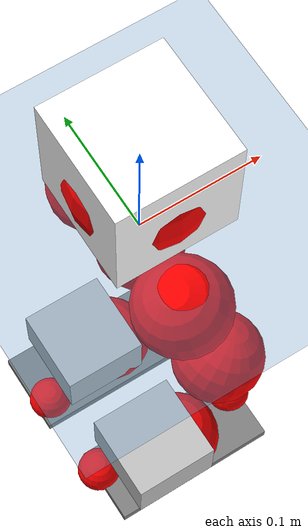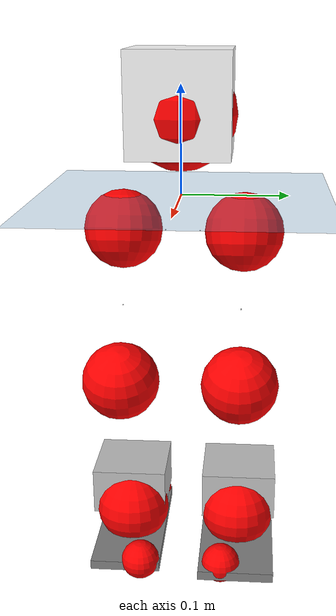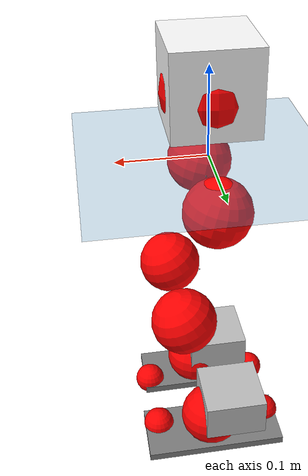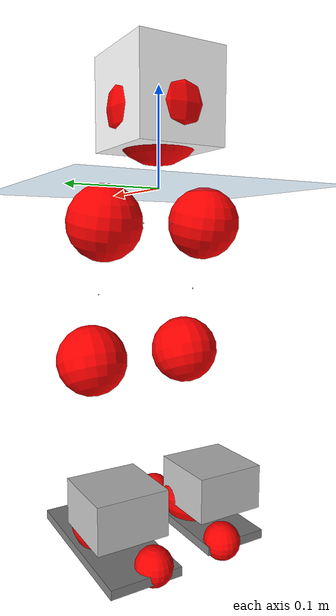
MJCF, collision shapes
<mujoco model="pi_12dof_release_v1">
  <compiler angle="radian" assetdir="assets" balanceinertia="true" inertiafromgeom="false"/>

  <option timestep="0.005" density="1.2" viscosity="2e-05"/>

  <size nkey="1"/>

  <visual>
    <quality shadowsize="8192"/>
    <map shadowclip="0.5"/>
  </visual>

  <default>
    <default class="/">
      <joint armature="0.01" damping="0.01" frictionloss="0.01"/>
      <geom contype="0" conaffinity="0" group="1" solref="-1000 -80"/>
      <site size="0.01 0.005 0.005" group="5"/>
      <general forcelimited="true" biastype="affine" gainprm="20" biasprm="0 -20 -0.5"/>
      <default class="foot">
        <geom size="0.0845 0.036 0.005" type="box" condim="6" group="4" priority="1" friction="0.9 0.2 0.2" solimp="0.015 1 0.005"/>
      </default>
      <default class="reward_collision_sphere">
        <geom group="5" rgba="1 0 0 1"/>
      </default>
    </default>
  </default>

  <asset>
    <texture type="skybox" colorspace="auto" name="//unnamed_texture_0" builtin="gradient" rgb1="0.95 0.95 0.95" rgb2="0.95 0.95 0.95" width="100" height="600"/>
    <texture type="2d" colorspace="auto" name="texplane" builtin="checker" rgb1="0.345 0.575 0.748" rgb2="0.345 0.575 0.748" markrgb="1 1 1" width="512" height="512"/>
    <material name="MatPlane" class="/" texture="texplane" texuniform="true" texrepeat="2 2" specular="0.9"/>
    <mesh name="baselink_1" class="/" file="baselink_1.STL"/>
    <mesh name="r_hip_pitch_link" class="/" file="r_hip_pitch_link.STL"/>
    <mesh name="r_hip_roll_link" class="/" file="r_hip_roll_link.STL"/>
    <mesh name="r_thigh_link" class="/" file="r_thigh_link.STL"/>
    <mesh name="r_calf_link" class="/" file="r_calf_link.STL"/>
    <mesh name="r_ankle_pitch_link" class="/" file="r_ankle_pitch_link.STL"/>
    <mesh name="r_ankle_roll_link" class="/" file="r_ankle_roll_link.STL"/>
    <mesh name="l_hip_pitch_link" class="/" file="l_hip_pitch_link.STL"/>
    <mesh name="l_hip_roll_link" class="/" file="l_hip_roll_link.STL"/>
    <mesh name="l_thigh_link" class="/" file="l_thigh_link.STL"/>
    <mesh name="l_calf_link" class="/" file="l_calf_link.STL"/>
    <mesh name="l_ankle_pitch_link" class="/" file="l_ankle_pitch_link.STL"/>
    <mesh name="l_ankle_roll_link" class="/" file="l_ankle_roll_link.STL"/>
  </asset>

  <worldbody>
    <geom name="floor" class="/" size="100 100 0.125" type="plane" group="0" material="MatPlane"/>
    <light name="toplight_shadow" class="/" pos="0 0 5" dir="0.0990148 0.0990148 -0.990148" type="directional" ambient="0.04 0.04 0.04" diffuse="0.55 0.55 0.55" specular="0.12 0.12 0.12"/>
    <light name="toplight_fill" class="/" pos="0 0 5" dir="0.0990148 0.0990148 -0.990148" type="directional" castshadow="false" ambient="0.04 0.04 0.04" diffuse="0.3 0.3 0.3" specular="0.08 0.08 0.08"/>
    <body name="trunk" pos="0.000121934 0.000450906 -0.00016651" quat="1 1.08604e-05 9.32057e-06 1.84619e-05">
      <inertial pos="0.00209833 -0.000578316 0.0425691" quat="0.698084 0.0126149 0.00500758 0.715887" mass="1.79761" diaginertia="0.0104563 0.00215543 0.00543962"/>
      <joint name="//unnamed_joint_0" type="free"/>
      <geom name="//unnamed_geom_1" class="/" type="mesh" density="0" rgba="1 1 1 1" mesh="baselink_1"/>
      <geom name="//unnamed_geom_2" class="/" size="0.0469183 0.0469183 0.0469183" pos="0 0 0.0843848" type="box" rgba="1 1 1 1"/>
      <geom name="//unnamed_geom_3" class="reward_collision_sphere" size="0.0516102" pos="0 0 0.0738367"/>
      <site name="imu" class="/" pos="-0.00278993 -0.00464381 0.00228946" size="0.00938367"/>
      <camera name="track" class="/" pos="0 -1.49813 0" quat="0.707107 0.707107 0 0" mode="trackcom"/>
      <camera name="ego_camera" class="/" pos="0.075842 0 0.189866" quat="-0.5 -0.5 0.5 0.5"/>
      <body name="r_hip_pitch_link" pos="-0.000541936 -0.0156266 -0.0337898" quat="0.992215 -3.02866e-06 -0.124533 -0.00012463">
        <inertial pos="0.00118983 -0.0420328 -0.000993705" quat="-0.0190147 0.70597 -0.0282179 0.707424" mass="0.307402" diaginertia="0.000114704 2.34054e-05 0.000109135"/>
        <joint name="r_hip_pitch_joint" class="/" pos="0 0 0" axis="0.000649391 -0.999998 0.00168868" range="-1.75184 1.26822" armature="0.00943526" damping="0.0116559" frictionloss="0.00919872"/>
        <geom name="//unnamed_geom_4" class="/" type="mesh" density="0" rgba="0.75294 0.75294 0.75294 1" mesh="r_hip_pitch_link"/>
        <geom name="//unnamed_geom_5" class="/" size="0.000469183 0.000469183 0.000469183" type="box" rgba="0.75294 0.75294 0.75294 1"/>
        <body name="r_hip_roll_link" pos="0.000878975 -0.0401313 0.000259895" quat="1 0.000221414 5.45219e-05 0.00022697">
          <inertial pos="-0.00160596 -0.00112139 -0.064494" quat="0.705711 -0.0790749 -0.0827313 0.699196" mass="0.320816" diaginertia="0.000351701 6.54414e-05 0.000166918"/>
          <joint name="r_hip_roll_joint" class="/" pos="0 0 0" axis="-0.999992 -0.00323535 -0.00241051" range="-0.12389 0.492554" armature="0.00975405" damping="0.0030863" frictionloss="0.00952976"/>
          <geom name="//unnamed_geom_6" class="/" type="mesh" density="0" rgba="0.75294 0.75294 0.75294 1" mesh="r_hip_roll_link"/>
          <geom name="//unnamed_geom_7" class="/" size="0.000469183 0.000469183 0.000469183" type="box" rgba="0.75294 0.75294 0.75294 1"/>
          <geom name="//unnamed_geom_8" class="reward_collision_sphere" size="0.0375347"/>
          <body name="r_thigh_link" pos="0.000405839 0.000254597 -0.0726808" quat="1 0.000367422 -2.6891e-05 0.000315088">
            <inertial pos="-0.000348987 0.000737796 -0.0511048" quat="0.737305 0.675559 -0.000615787 0.000327444" mass="0.0928474" diaginertia="0.000132864 2.24993e-05 7.47707e-05"/>
            <joint name="r_thigh_joint" class="/" pos="0 0 0" axis="-0.000675646 -0.000275389 -1" range="-0.28699 0.595036" armature="0.00965803" damping="0.00371317" frictionloss="0.00947208"/>
            <geom name="//unnamed_geom_9" class="/" type="mesh" density="0" rgba="0.75294 0.75294 0.75294 1" mesh="r_thigh_link"/>
            <geom name="//unnamed_geom_10" class="/" size="0.000469183 0.000469183 0.000469183" type="box" rgba="0.75294 0.75294 0.75294 1"/>
            <body name="r_calf_link" pos="0.000581519 -0.00156706 -0.0738996" quat="0.947655 1.14785e-05 0.319295 1.25048e-05">
              <inertial pos="0.000265001 -0.000311135 -0.0732354" quat="0.999976 -0.0035545 0.00122692 0.00576492" mass="0.669459" diaginertia="0.00370993 0.00080967 0.000226362"/>
              <joint name="r_calf_joint" class="/" pos="0 0 0" axis="-0.00213574 -0.999991 -0.00371654" range="-1.62504 0.629917" armature="0.00921625" damping="0.00748668" frictionloss="0.00898846"/>
              <geom name="//unnamed_geom_11" class="/" type="mesh" density="0" rgba="0.75294 0.75294 0.75294 1" mesh="r_calf_link"/>
              <geom name="//unnamed_geom_12" class="/" size="0.000469183 0.000469183 0.000469183" type="box" rgba="0.75294 0.75294 0.75294 1"/>
              <geom name="//unnamed_geom_13" class="reward_collision_sphere" size="0.0375347"/>
              <body name="r_ankle_pitch_link" pos="0.00095308 0.00168906 -0.148492" quat="0.980143 -4.19876e-05 -0.198291 -6.58525e-05">
                <inertial pos="0.00574891 0.00161232 4.79302e-05" quat="0.00269957 0.710338 -0.00182378 0.703853" mass="0.143775" diaginertia="0.000323679 5.22464e-05 0.000156912"/>
                <joint name="r_ankle_pitch_joint" class="/" pos="0 0 0" axis="-0.00305419 -0.999987 0.00399404" range="-1.31489 0.513188" armature="0.00925781" damping="0.00504986" frictionloss="0.00952627"/>
                <geom name="//unnamed_geom_14" class="/" type="mesh" density="0" rgba="0.75294 0.75294 0.75294 1" mesh="r_ankle_pitch_link"/>
                <geom name="//unnamed_geom_15" class="/" size="0.0365963 0.0375347 0.0234592" type="box" rgba="0.75294 0.75294 0.75294 1"/>
                <body name="r_ankle_roll_link" pos="0.0762489 0.00286888 0.000518664" quat="1 -3.88021e-05 6.32453e-05 -1.59658e-05">
                  <inertial pos="-0.0246792 0.00028435 -0.0160897" quat="0.556931 0.433562 0.433036 0.560653" mass="0.427556" diaginertia="0.00120385 0.000243013 0.000369938"/>
                  <joint name="r_ankle_roll_joint" class="/" pos="0 0 0" axis="-1 0.000457698 6.69513e-05" range="-0.169023 0.154829" armature="0.00939145" damping="0.00994461" frictionloss="0.00979326"/>
                  <geom name="//unnamed_geom_16" class="/" type="mesh" density="0" rgba="0.75294 0.75294 0.75294 1" mesh="r_ankle_roll_link"/>
                  <geom name="//unnamed_geom_17" class="/" type="mesh" rgba="0.75294 0.75294 0.75294 1" mesh="r_ankle_roll_link"/>
                  <geom name="right_foot" class="foot" size="0.073948 0.0342038 0.00461262" pos="-0.0515726 0 -0.0464116"/>
                  <geom name="//unnamed_geom_19" class="reward_collision_sphere" size="0.0375347" pos="-0.0505614 0 -0.0210962"/>
                  <geom name="//unnamed_geom_20" class="reward_collision_sphere" size="0.0187673" pos="0.0151684 0.0149813 -0.0421924"/>
                  <geom name="//unnamed_geom_21" class="reward_collision_sphere" size="0.0187673" pos="-0.121347 0.0149813 -0.0421924"/>
                  <site name="right_foot" class="foot" pos="-0.0515726 0 -0.0464116" size="0.00938367"/>
                </body>
              </body>
            </body>
          </body>
        </body>
      </body>
      <body name="l_hip_pitch_link" pos="-0.000415415 0.0174556 -0.034202" quat="0.992196 3.04716e-06 -0.124684 -2.41394e-05">
        <inertial pos="0.00118597 0.0402203 -0.000977864" quat="-0.0392601 0.705218 0.0295596 0.707285" mass="0.32029" diaginertia="0.000134589 2.46081e-05 0.000130582"/>
        <joint name="l_hip_pitch_joint" class="/" pos="0 0 0" axis="1.99391e-05 1 -0.000203179" range="-1.24936 1.7497" armature="0.00956643" damping="0.00298562" frictionloss="0.00899809"/>
        <geom name="//unnamed_geom_22" class="/" type="mesh" density="0" rgba="0.75294 0.75294 0.75294 1" mesh="l_hip_pitch_link"/>
        <geom name="//unnamed_geom_23" class="/" size="0.000469183 0.000469183 0.000469183" type="box" rgba="0.75294 0.75294 0.75294 1"/>
        <body name="l_hip_roll_link" pos="0.00111755 0.0419207 -0.000855236" quat="1 0.000123695 4.986e-05 -8.81357e-05">
          <inertial pos="-0.0012443 -1.04832e-06 -0.0653018" quat="0.702327 -0.0766221 -0.0780684 0.7034" mass="0.324604" diaginertia="0.000349485 6.47319e-05 0.000167451"/>
          <joint name="l_hip_roll_joint" class="/" pos="0 0 0" axis="-0.999991 -0.00248994 0.00333667" stiffness="0.00033592" range="-0.513231 0.11993" armature="0.00925457" damping="0.00706791" frictionloss="0.00922801"/>
          <geom name="//unnamed_geom_24" class="/" type="mesh" density="0" rgba="0.75294 0.75294 0.75294 1" mesh="l_hip_roll_link"/>
          <geom name="//unnamed_geom_25" class="/" size="0.000469183 0.000469183 0.000469183" type="box" rgba="0.75294 0.75294 0.75294 1"/>
          <geom name="//unnamed_geom_26" class="reward_collision_sphere" size="0.0375347"/>
          <body name="l_thigh_link" pos="0.000951717 -0.00153945 -0.0731988" quat="1 -0.000100746 0.000121841 -7.78697e-06">
            <inertial pos="0.000388921 -0.00145348 -0.0506072" quat="0.675555 0.737308 0.000102075 -0.00149111" mass="0.0909939" diaginertia="0.000130781 2.21504e-05 7.48609e-05"/>
            <joint name="l_thigh_joint" class="/" pos="0 0 0" axis="0.000806246 0.000158797 -1" range="-0.595951 0.29921" armature="0.00982893" damping="0.00158432" frictionloss="0.00934402"/>
            <geom name="//unnamed_geom_27" class="/" type="mesh" density="0" rgba="0.75294 0.75294 0.75294 1" mesh="l_thigh_link"/>
            <geom name="//unnamed_geom_28" class="/" size="0.000469183 0.000469183 0.000469183" type="box" rgba="0.75294 0.75294 0.75294 1"/>
            <body name="l_calf_link" pos="-0.000450877 0.000266227 -0.0732562" quat="0.947653 -1.19595e-05 0.319301 4.13503e-05">
              <inertial pos="0.000449991 0.00205355 -0.0733397" quat="0.999992 0.00203089 -0.00093215 0.00323615" mass="0.662436" diaginertia="0.00365488 0.000812255 0.000226687"/>
              <joint name="l_calf_joint" class="/" pos="0 0 0" axis="-0.00143863 0.999987 -0.00492757" stiffness="0.00253938" range="-0.64047 1.66078" armature="0.00943672" damping="0.0091074" frictionloss="0.00929294"/>
              <geom name="//unnamed_geom_29" class="/" type="mesh" density="0" rgba="0.75294 0.75294 0.75294 1" mesh="l_calf_link"/>
              <geom name="//unnamed_geom_30" class="/" size="0.000469183 0.000469183 0.000469183" type="box" rgba="0.75294 0.75294 0.75294 1"/>
              <geom name="//unnamed_geom_31" class="reward_collision_sphere" size="0.0375347"/>
              <body name="l_ankle_pitch_link" pos="0.00027223 0.000491768 -0.148023" quat="0.980071 -8.64753e-06 -0.19865 -0.000254806">
                <inertial pos="0.00489514 -0.000838679 -0.00101352" quat="-0.00167975 0.705685 0.000915648 0.708523" mass="0.146549" diaginertia="0.000328244 5.2858e-05 0.000158252"/>
                <joint name="l_ankle_pitch_joint" class="/" pos="0 0 0" axis="-8.24621e-05 1 0.000378588" stiffness="0.00198454" range="-0.502062 1.28557" armature="0.00937204" damping="0.00881696" frictionloss="0.0093837"/>
                <geom name="//unnamed_geom_32" class="/" type="mesh" density="0" rgba="0.75294 0.75294 0.75294 1" mesh="l_ankle_pitch_link"/>
                <geom name="//unnamed_geom_33" class="/" size="0.0365963 0.0375347 0.0234592" type="box" rgba="0.75294 0.75294 0.75294 1"/>
                <body name="l_ankle_roll_link" pos="0.0746324 -0.000748567 -0.000494124" quat="1 1.39795e-05 -0.000308025 -0.000361932">
                  <inertial pos="-0.0238018 -0.000585966 -0.0151522" quat="0.55887 0.430945 0.433409 0.560453" mass="0.431383" diaginertia="0.0012062 0.00024341 0.000373225"/>
                  <joint name="l_ankle_roll_joint" class="/" pos="0 0 0" axis="-0.99998 0.00620313 0.00108721" stiffness="0.00199801" range="-0.134633 0.164147" armature="0.00964346" damping="0.0107385" frictionloss="0.00938783"/>
                  <geom name="//unnamed_geom_34" class="/" type="mesh" density="0" rgba="0.75294 0.75294 0.75294 1" mesh="l_ankle_roll_link"/>
                  <geom name="//unnamed_geom_35" class="/" type="mesh" rgba="0.75294 0.75294 0.75294 1" mesh="l_ankle_roll_link"/>
                  <geom name="left_foot" class="foot" size="0.0840265 0.0369436 0.00463609" pos="-0.0515726 0 -0.0464116"/>
                  <geom name="//unnamed_geom_37" class="reward_collision_sphere" size="0.0375347" pos="-0.0505614 0 -0.0210962"/>
                  <geom name="//unnamed_geom_38" class="reward_collision_sphere" size="0.0187673" pos="0.0151684 -0.0149813 -0.0421924"/>
                  <geom name="//unnamed_geom_39" class="reward_collision_sphere" size="0.0187673" pos="-0.121347 -0.0149813 -0.0421924"/>
                  <site name="left_foot" class="foot" pos="-0.0515726 0 -0.0464116" size="0.00938367"/>
                </body>
              </body>
            </body>
          </body>
        </body>
      </body>
    </body>
  </worldbody>

  <contact>
    <pair class="/" geom1="floor" geom2="right_foot" name="//unnamed_contact_1"/>
    <pair class="/" geom1="floor" geom2="left_foot" name="//unnamed_contact_0"/>
  </contact>

  <actuator>
    <general name="r_hip_pitch_joint" class="/" joint="r_hip_pitch_joint" forcerange="-19.4995 19.4995" gainprm="19.2702" biasprm="0 -19.2702 -0.463429"/>
    <general name="r_hip_roll_joint" class="/" joint="r_hip_roll_joint" forcerange="-19.7973 19.7973" gainprm="19.2702" biasprm="0 -19.2702 -0.463429"/>
    <general name="r_thigh_joint" class="/" joint="r_thigh_joint" forcerange="-19.1645 19.1645" gainprm="19.2702" biasprm="0 -19.2702 -0.463429"/>
    <general name="r_calf_joint" class="/" joint="r_calf_joint" forcerange="-19.541 19.541" gainprm="19.2702" biasprm="0 -19.2702 -0.463429"/>
    <general name="r_ankle_pitch_joint" class="/" joint="r_ankle_pitch_joint" forcerange="-20.1049 20.1049" gainprm="19.2702" biasprm="0 -19.2702 -0.463429"/>
    <general name="r_ankle_roll_joint" class="/" joint="r_ankle_roll_joint" forcerange="-20.1168 20.1168" gainprm="19.2702" biasprm="0 -19.2702 -0.463429"/>
    <general name="l_hip_pitch_joint" class="/" joint="l_hip_pitch_joint" forcerange="-20.657 20.657" gainprm="19.2702" biasprm="0 -19.2702 -0.463429"/>
    <general name="l_hip_roll_joint" class="/" joint="l_hip_roll_joint" forcerange="-20.3196 20.3196" gainprm="19.2702" biasprm="0 -19.2702 -0.463429"/>
    <general name="l_thigh_joint" class="/" joint="l_thigh_joint" forcerange="-19.6679 19.6679" gainprm="19.2702" biasprm="0 -19.2702 -0.463429"/>
    <general name="l_calf_joint" class="/" joint="l_calf_joint" forcerange="-20.1553 20.1553" gainprm="19.2702" biasprm="0 -19.2702 -0.463429"/>
    <general name="l_ankle_pitch_joint" class="/" joint="l_ankle_pitch_joint" forcerange="-20.1359 20.1359" gainprm="19.2702" biasprm="0 -19.2702 -0.463429"/>
    <general name="l_ankle_roll_joint" class="/" joint="l_ankle_roll_joint" forcerange="-19.0734 19.0734" gainprm="19.2702" biasprm="0 -19.2702 -0.463429"/>
  </actuator>

  <sensor>
    <gyro site="imu" name="imu_angular_velocity"/>
    <velocimeter site="imu" name="imu_linear_velocity"/>
    <framelinvel objtype="site" objname="left_foot" name="left_foot_global_linear_velocity"/>
    <framelinvel objtype="site" objname="right_foot" name="right_foot_global_linear_velocity"/>
  </sensor>

  <keyframe>
    <key name="home" qpos="0 0 0.291 1 0 0 0 0.4 0 0 -0.8 0.4 0 -0.4 0 0 0.8 -0.4 0"/>
  </keyframe>
</mujoco>
